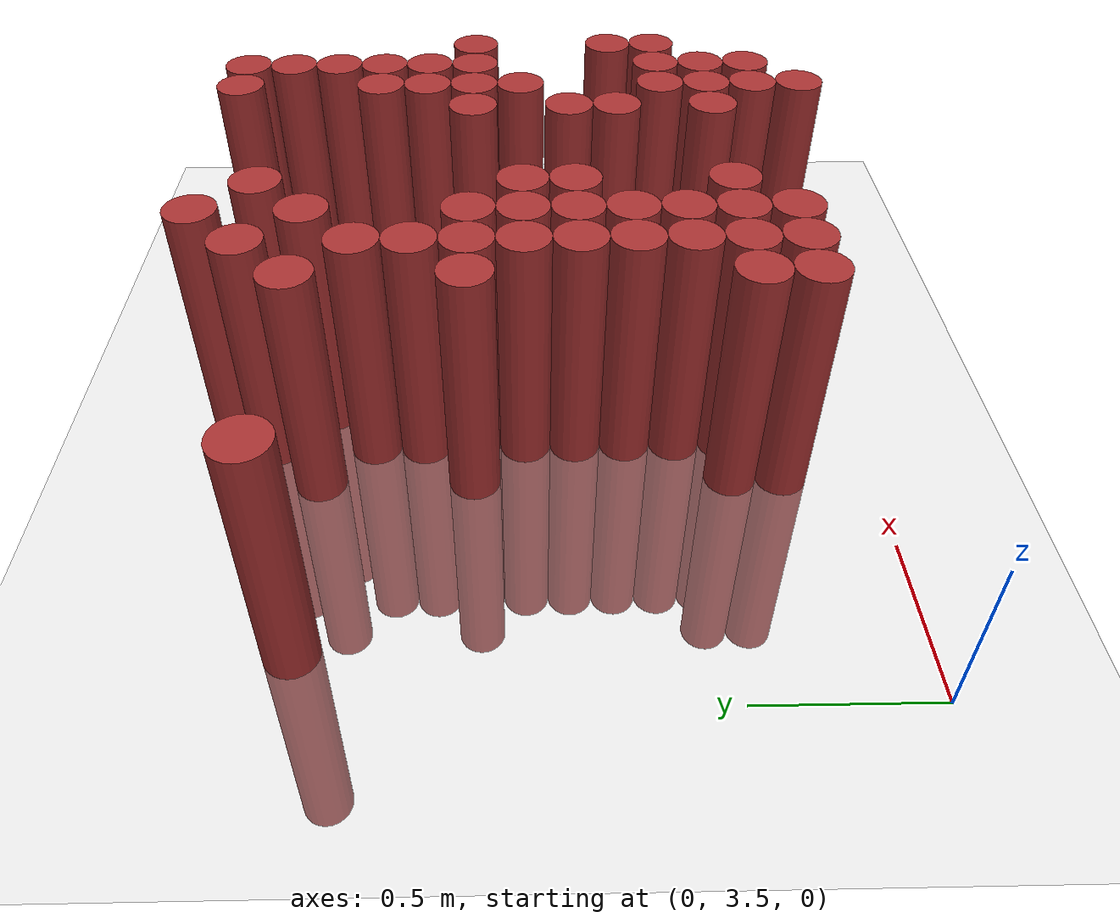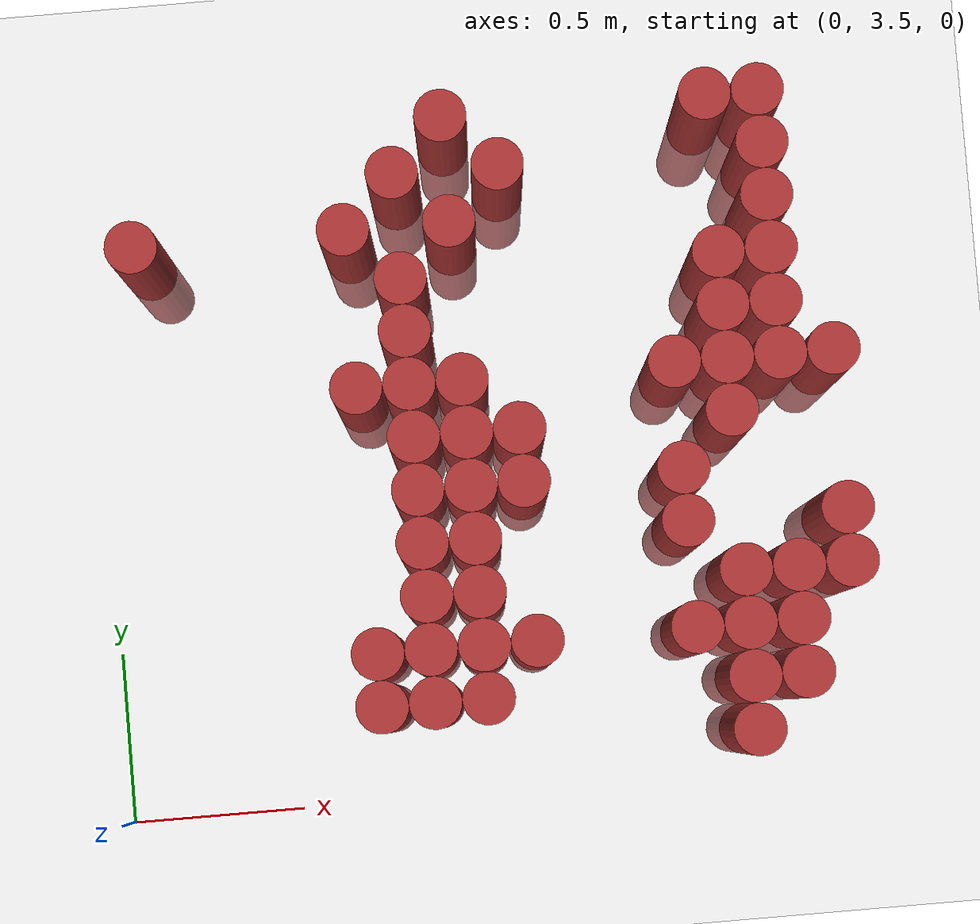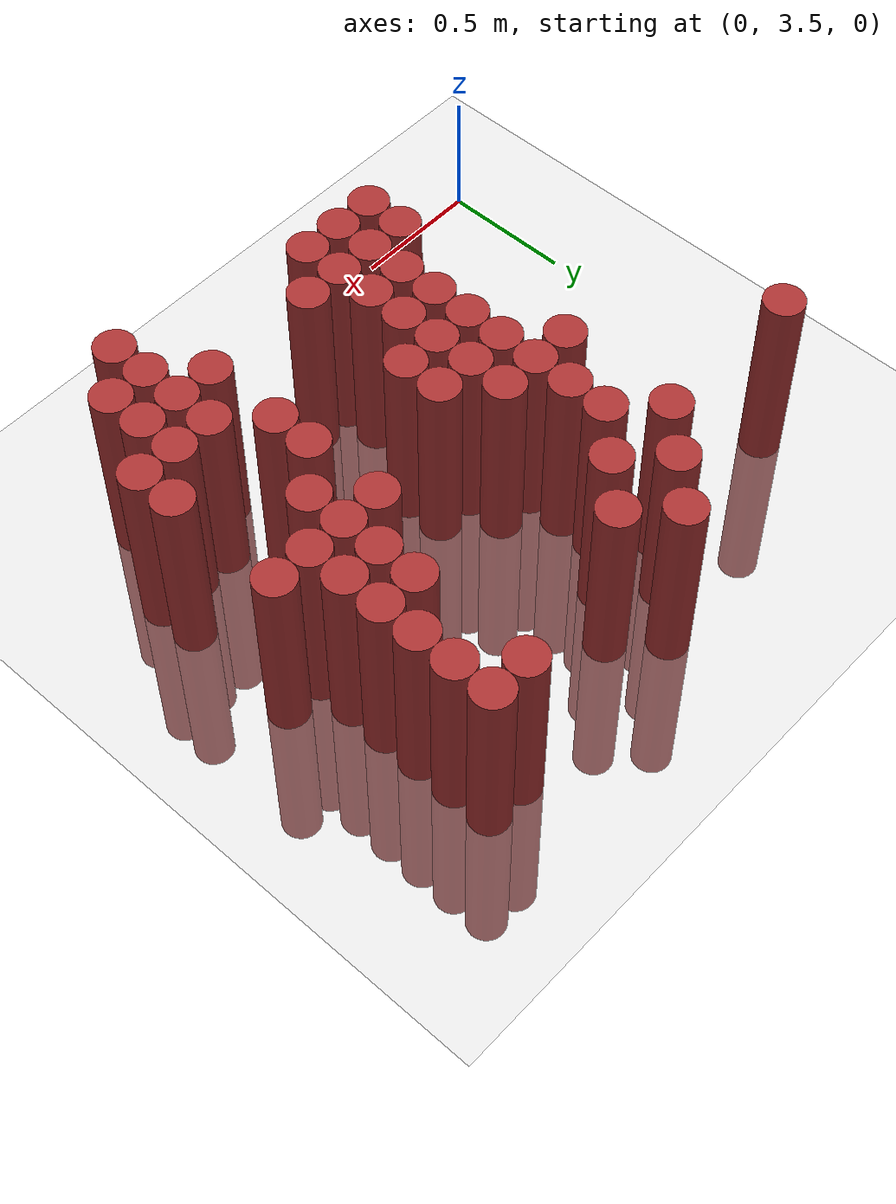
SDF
<sdf version="1.6">
 <world name="default">
  <model name="ground_plane">
   <static>1</static>
   <link name="link">
    <collision name="collision">
     <geometry><plane><normal>0 0 1</normal><size>100 100</size></plane></geometry>
     <surface><friction><ode><mu>100</mu><mu2>50</mu2></ode></friction></surface>
    </collision>
    <visual name="visual">
     <cast_shadows>0</cast_shadows>
     <geometry><plane><normal>0 0 1</normal><size>100 100</size></plane></geometry>
     <material>
      <script><uri>file://media/materials/scripts/gazebo.material</uri><name>Gazebo/Grey</name></script>
     </material>
    </visual>
   </link>
  </model>
  <model name="unit_cylinder_440">
   <static>1</static>
   <pose>0.175000 5.125000 0.000000 0.000000 0.000000 0.000000</pose>
   <link name="link">
    <inertial>
     <mass>1</mass>
     <inertia><ixx>0.145833</ixx><ixy>0</ixy><ixz>0</ixz><iyy>0.145833</iyy><iyz>0</iyz><izz>0.125</izz></inertia>
    </inertial>
    <collision name="collision">
     <geometry><cylinder><radius>0.075000</radius><length>1.5</length></cylinder></geometry>
    </collision>
    <visual name="visual">
     <geometry><cylinder><radius>0.075000</radius><length>1.5</length></cylinder></geometry>
     <material>
      <ambient>0.648000 0.192000 0.192000 1</ambient>
      <diffuse>0.648000 0.192000 0.192000 1</diffuse>
     </material>
     <material>
      <script><name>Gazebo/Grey</name><uri>file://media/materials/scripts/gazebo.material</uri></script>
     </material>
    </visual>
   </link>
  </model>
  <model name="unit_cylinder_457">
   <static>1</static>
   <pose>0.775000 3.775000 0.000000 0.000000 0.000000 0.000000</pose>
   <link name="link">
    <inertial>
     <mass>1</mass>
     <inertia><ixx>0.145833</ixx><ixy>0</ixy><ixz>0</ixz><iyy>0.145833</iyy><iyz>0</iyz><izz>0.125</izz></inertia>
    </inertial>
    <collision name="collision">
     <geometry><cylinder><radius>0.075000</radius><length>1.5</length></cylinder></geometry>
    </collision>
    <visual name="visual">
     <geometry><cylinder><radius>0.075000</radius><length>1.5</length></cylinder></geometry>
     <material>
      <ambient>0.648000 0.192000 0.192000 1</ambient>
      <diffuse>0.648000 0.192000 0.192000 1</diffuse>
     </material>
     <material>
      <script><name>Gazebo/Grey</name><uri>file://media/materials/scripts/gazebo.material</uri></script>
     </material>
    </visual>
   </link>
  </model>
  <model name="unit_cylinder_458">
   <static>1</static>
   <pose>0.775000 3.925000 0.000000 0.000000 0.000000 0.000000</pose>
   <link name="link">
    <inertial>
     <mass>1</mass>
     <inertia><ixx>0.145833</ixx><ixy>0</ixy><ixz>0</ixz><iyy>0.145833</iyy><iyz>0</iyz><izz>0.125</izz></inertia>
    </inertial>
    <collision name="collision">
     <geometry><cylinder><radius>0.075000</radius><length>1.5</length></cylinder></geometry>
    </collision>
    <visual name="visual">
     <geometry><cylinder><radius>0.075000</radius><length>1.5</length></cylinder></geometry>
     <material>
      <ambient>0.648000 0.192000 0.192000 1</ambient>
      <diffuse>0.648000 0.192000 0.192000 1</diffuse>
     </material>
     <material>
      <script><name>Gazebo/Grey</name><uri>file://media/materials/scripts/gazebo.material</uri></script>
     </material>
    </visual>
   </link>
  </model>
  <model name="unit_cylinder_459">
   <static>1</static>
   <pose>0.775000 4.675000 0.000000 0.000000 0.000000 0.000000</pose>
   <link name="link">
    <inertial>
     <mass>1</mass>
     <inertia><ixx>0.145833</ixx><ixy>0</ixy><ixz>0</ixz><iyy>0.145833</iyy><iyz>0</iyz><izz>0.125</izz></inertia>
    </inertial>
    <collision name="collision">
     <geometry><cylinder><radius>0.075000</radius><length>1.5</length></cylinder></geometry>
    </collision>
    <visual name="visual">
     <geometry><cylinder><radius>0.075000</radius><length>1.5</length></cylinder></geometry>
     <material>
      <ambient>0.648000 0.192000 0.192000 1</ambient>
      <diffuse>0.648000 0.192000 0.192000 1</diffuse>
     </material>
     <material>
      <script><name>Gazebo/Grey</name><uri>file://media/materials/scripts/gazebo.material</uri></script>
     </material>
    </visual>
   </link>
  </model>
  <model name="unit_cylinder_460">
   <static>1</static>
   <pose>0.775000 5.125000 0.000000 0.000000 0.000000 0.000000</pose>
   <link name="link">
    <inertial>
     <mass>1</mass>
     <inertia><ixx>0.145833</ixx><ixy>0</ixy><ixz>0</ixz><iyy>0.145833</iyy><iyz>0</iyz><izz>0.125</izz></inertia>
    </inertial>
    <collision name="collision">
     <geometry><cylinder><radius>0.075000</radius><length>1.5</length></cylinder></geometry>
    </collision>
    <visual name="visual">
     <geometry><cylinder><radius>0.075000</radius><length>1.5</length></cylinder></geometry>
     <material>
      <ambient>0.648000 0.192000 0.192000 1</ambient>
      <diffuse>0.648000 0.192000 0.192000 1</diffuse>
     </material>
     <material>
      <script><name>Gazebo/Grey</name><uri>file://media/materials/scripts/gazebo.material</uri></script>
     </material>
    </visual>
   </link>
  </model>
  <model name="unit_cylinder_468">
   <static>1</static>
   <pose>0.925000 3.775000 0.000000 0.000000 0.000000 0.000000</pose>
   <link name="link">
    <inertial>
     <mass>1</mass>
     <inertia><ixx>0.145833</ixx><ixy>0</ixy><ixz>0</ixz><iyy>0.145833</iyy><iyz>0</iyz><izz>0.125</izz></inertia>
    </inertial>
    <collision name="collision">
     <geometry><cylinder><radius>0.075000</radius><length>1.5</length></cylinder></geometry>
    </collision>
    <visual name="visual">
     <geometry><cylinder><radius>0.075000</radius><length>1.5</length></cylinder></geometry>
     <material>
      <ambient>0.648000 0.192000 0.192000 1</ambient>
      <diffuse>0.648000 0.192000 0.192000 1</diffuse>
     </material>
     <material>
      <script><name>Gazebo/Grey</name><uri>file://media/materials/scripts/gazebo.material</uri></script>
     </material>
    </visual>
   </link>
  </model>
  <model name="unit_cylinder_469">
   <static>1</static>
   <pose>0.925000 3.925000 0.000000 0.000000 0.000000 0.000000</pose>
   <link name="link">
    <inertial>
     <mass>1</mass>
     <inertia><ixx>0.145833</ixx><ixy>0</ixy><ixz>0</ixz><iyy>0.145833</iyy><iyz>0</iyz><izz>0.125</izz></inertia>
    </inertial>
    <collision name="collision">
     <geometry><cylinder><radius>0.075000</radius><length>1.5</length></cylinder></geometry>
    </collision>
    <visual name="visual">
     <geometry><cylinder><radius>0.075000</radius><length>1.5</length></cylinder></geometry>
     <material>
      <ambient>0.648000 0.192000 0.192000 1</ambient>
      <diffuse>0.648000 0.192000 0.192000 1</diffuse>
     </material>
     <material>
      <script><name>Gazebo/Grey</name><uri>file://media/materials/scripts/gazebo.material</uri></script>
     </material>
    </visual>
   </link>
  </model>
  <model name="unit_cylinder_470">
   <static>1</static>
   <pose>0.925000 4.075000 0.000000 0.000000 0.000000 0.000000</pose>
   <link name="link">
    <inertial>
     <mass>1</mass>
     <inertia><ixx>0.145833</ixx><ixy>0</ixy><ixz>0</ixz><iyy>0.145833</iyy><iyz>0</iyz><izz>0.125</izz></inertia>
    </inertial>
    <collision name="collision">
     <geometry><cylinder><radius>0.075000</radius><length>1.5</length></cylinder></geometry>
    </collision>
    <visual name="visual">
     <geometry><cylinder><radius>0.075000</radius><length>1.5</length></cylinder></geometry>
     <material>
      <ambient>0.648000 0.192000 0.192000 1</ambient>
      <diffuse>0.648000 0.192000 0.192000 1</diffuse>
     </material>
     <material>
      <script><name>Gazebo/Grey</name><uri>file://media/materials/scripts/gazebo.material</uri></script>
     </material>
    </visual>
   </link>
  </model>
  <model name="unit_cylinder_471">
   <static>1</static>
   <pose>0.925000 4.225000 0.000000 0.000000 0.000000 0.000000</pose>
   <link name="link">
    <inertial>
     <mass>1</mass>
     <inertia><ixx>0.145833</ixx><ixy>0</ixy><ixz>0</ixz><iyy>0.145833</iyy><iyz>0</iyz><izz>0.125</izz></inertia>
    </inertial>
    <collision name="collision">
     <geometry><cylinder><radius>0.075000</radius><length>1.5</length></cylinder></geometry>
    </collision>
    <visual name="visual">
     <geometry><cylinder><radius>0.075000</radius><length>1.5</length></cylinder></geometry>
     <material>
      <ambient>0.648000 0.192000 0.192000 1</ambient>
      <diffuse>0.648000 0.192000 0.192000 1</diffuse>
     </material>
     <material>
      <script><name>Gazebo/Grey</name><uri>file://media/materials/scripts/gazebo.material</uri></script>
     </material>
    </visual>
   </link>
  </model>
  <model name="unit_cylinder_472">
   <static>1</static>
   <pose>0.925000 4.375000 0.000000 0.000000 0.000000 0.000000</pose>
   <link name="link">
    <inertial>
     <mass>1</mass>
     <inertia><ixx>0.145833</ixx><ixy>0</ixy><ixz>0</ixz><iyy>0.145833</iyy><iyz>0</iyz><izz>0.125</izz></inertia>
    </inertial>
    <collision name="collision">
     <geometry><cylinder><radius>0.075000</radius><length>1.5</length></cylinder></geometry>
    </collision>
    <visual name="visual">
     <geometry><cylinder><radius>0.075000</radius><length>1.5</length></cylinder></geometry>
     <material>
      <ambient>0.648000 0.192000 0.192000 1</ambient>
      <diffuse>0.648000 0.192000 0.192000 1</diffuse>
     </material>
     <material>
      <script><name>Gazebo/Grey</name><uri>file://media/materials/scripts/gazebo.material</uri></script>
     </material>
    </visual>
   </link>
  </model>
  <model name="unit_cylinder_473">
   <static>1</static>
   <pose>0.925000 4.525000 0.000000 0.000000 0.000000 0.000000</pose>
   <link name="link">
    <inertial>
     <mass>1</mass>
     <inertia><ixx>0.145833</ixx><ixy>0</ixy><ixz>0</ixz><iyy>0.145833</iyy><iyz>0</iyz><izz>0.125</izz></inertia>
    </inertial>
    <collision name="collision">
     <geometry><cylinder><radius>0.075000</radius><length>1.5</length></cylinder></geometry>
    </collision>
    <visual name="visual">
     <geometry><cylinder><radius>0.075000</radius><length>1.5</length></cylinder></geometry>
     <material>
      <ambient>0.648000 0.192000 0.192000 1</ambient>
      <diffuse>0.648000 0.192000 0.192000 1</diffuse>
     </material>
     <material>
      <script><name>Gazebo/Grey</name><uri>file://media/materials/scripts/gazebo.material</uri></script>
     </material>
    </visual>
   </link>
  </model>
  <model name="unit_cylinder_474">
   <static>1</static>
   <pose>0.925000 4.675000 0.000000 0.000000 0.000000 0.000000</pose>
   <link name="link">
    <inertial>
     <mass>1</mass>
     <inertia><ixx>0.145833</ixx><ixy>0</ixy><ixz>0</ixz><iyy>0.145833</iyy><iyz>0</iyz><izz>0.125</izz></inertia>
    </inertial>
    <collision name="collision">
     <geometry><cylinder><radius>0.075000</radius><length>1.5</length></cylinder></geometry>
    </collision>
    <visual name="visual">
     <geometry><cylinder><radius>0.075000</radius><length>1.5</length></cylinder></geometry>
     <material>
      <ambient>0.648000 0.192000 0.192000 1</ambient>
      <diffuse>0.648000 0.192000 0.192000 1</diffuse>
     </material>
     <material>
      <script><name>Gazebo/Grey</name><uri>file://media/materials/scripts/gazebo.material</uri></script>
     </material>
    </visual>
   </link>
  </model>
  <model name="unit_cylinder_475">
   <static>1</static>
   <pose>0.925000 4.825000 0.000000 0.000000 0.000000 0.000000</pose>
   <link name="link">
    <inertial>
     <mass>1</mass>
     <inertia><ixx>0.145833</ixx><ixy>0</ixy><ixz>0</ixz><iyy>0.145833</iyy><iyz>0</iyz><izz>0.125</izz></inertia>
    </inertial>
    <collision name="collision">
     <geometry><cylinder><radius>0.075000</radius><length>1.5</length></cylinder></geometry>
    </collision>
    <visual name="visual">
     <geometry><cylinder><radius>0.075000</radius><length>1.5</length></cylinder></geometry>
     <material>
      <ambient>0.648000 0.192000 0.192000 1</ambient>
      <diffuse>0.648000 0.192000 0.192000 1</diffuse>
     </material>
     <material>
      <script><name>Gazebo/Grey</name><uri>file://media/materials/scripts/gazebo.material</uri></script>
     </material>
    </visual>
   </link>
  </model>
  <model name="unit_cylinder_476">
   <static>1</static>
   <pose>0.925000 4.975000 0.000000 0.000000 0.000000 0.000000</pose>
   <link name="link">
    <inertial>
     <mass>1</mass>
     <inertia><ixx>0.145833</ixx><ixy>0</ixy><ixz>0</ixz><iyy>0.145833</iyy><iyz>0</iyz><izz>0.125</izz></inertia>
    </inertial>
    <collision name="collision">
     <geometry><cylinder><radius>0.075000</radius><length>1.5</length></cylinder></geometry>
    </collision>
    <visual name="visual">
     <geometry><cylinder><radius>0.075000</radius><length>1.5</length></cylinder></geometry>
     <material>
      <ambient>0.648000 0.192000 0.192000 1</ambient>
      <diffuse>0.648000 0.192000 0.192000 1</diffuse>
     </material>
     <material>
      <script><name>Gazebo/Grey</name><uri>file://media/materials/scripts/gazebo.material</uri></script>
     </material>
    </visual>
   </link>
  </model>
  <model name="unit_cylinder_477">
   <static>1</static>
   <pose>0.925000 5.275000 0.000000 0.000000 0.000000 0.000000</pose>
   <link name="link">
    <inertial>
     <mass>1</mass>
     <inertia><ixx>0.145833</ixx><ixy>0</ixy><ixz>0</ixz><iyy>0.145833</iyy><iyz>0</iyz><izz>0.125</izz></inertia>
    </inertial>
    <collision name="collision">
     <geometry><cylinder><radius>0.075000</radius><length>1.5</length></cylinder></geometry>
    </collision>
    <visual name="visual">
     <geometry><cylinder><radius>0.075000</radius><length>1.5</length></cylinder></geometry>
     <material>
      <ambient>0.648000 0.192000 0.192000 1</ambient>
      <diffuse>0.648000 0.192000 0.192000 1</diffuse>
     </material>
     <material>
      <script><name>Gazebo/Grey</name><uri>file://media/materials/scripts/gazebo.material</uri></script>
     </material>
    </visual>
   </link>
  </model>
  <model name="unit_cylinder_488">
   <static>1</static>
   <pose>1.075000 3.775000 0.000000 0.000000 0.000000 0.000000</pose>
   <link name="link">
    <inertial>
     <mass>1</mass>
     <inertia><ixx>0.145833</ixx><ixy>0</ixy><ixz>0</ixz><iyy>0.145833</iyy><iyz>0</iyz><izz>0.125</izz></inertia>
    </inertial>
    <collision name="collision">
     <geometry><cylinder><radius>0.075000</radius><length>1.5</length></cylinder></geometry>
    </collision>
    <visual name="visual">
     <geometry><cylinder><radius>0.075000</radius><length>1.5</length></cylinder></geometry>
     <material>
      <ambient>0.648000 0.192000 0.192000 1</ambient>
      <diffuse>0.648000 0.192000 0.192000 1</diffuse>
     </material>
     <material>
      <script><name>Gazebo/Grey</name><uri>file://media/materials/scripts/gazebo.material</uri></script>
     </material>
    </visual>
   </link>
  </model>
  <model name="unit_cylinder_489">
   <static>1</static>
   <pose>1.075000 3.925000 0.000000 0.000000 0.000000 0.000000</pose>
   <link name="link">
    <inertial>
     <mass>1</mass>
     <inertia><ixx>0.145833</ixx><ixy>0</ixy><ixz>0</ixz><iyy>0.145833</iyy><iyz>0</iyz><izz>0.125</izz></inertia>
    </inertial>
    <collision name="collision">
     <geometry><cylinder><radius>0.075000</radius><length>1.5</length></cylinder></geometry>
    </collision>
    <visual name="visual">
     <geometry><cylinder><radius>0.075000</radius><length>1.5</length></cylinder></geometry>
     <material>
      <ambient>0.648000 0.192000 0.192000 1</ambient>
      <diffuse>0.648000 0.192000 0.192000 1</diffuse>
     </material>
     <material>
      <script><name>Gazebo/Grey</name><uri>file://media/materials/scripts/gazebo.material</uri></script>
     </material>
    </visual>
   </link>
  </model>
  <model name="unit_cylinder_490">
   <static>1</static>
   <pose>1.075000 4.075000 0.000000 0.000000 0.000000 0.000000</pose>
   <link name="link">
    <inertial>
     <mass>1</mass>
     <inertia><ixx>0.145833</ixx><ixy>0</ixy><ixz>0</ixz><iyy>0.145833</iyy><iyz>0</iyz><izz>0.125</izz></inertia>
    </inertial>
    <collision name="collision">
     <geometry><cylinder><radius>0.075000</radius><length>1.5</length></cylinder></geometry>
    </collision>
    <visual name="visual">
     <geometry><cylinder><radius>0.075000</radius><length>1.5</length></cylinder></geometry>
     <material>
      <ambient>0.648000 0.192000 0.192000 1</ambient>
      <diffuse>0.648000 0.192000 0.192000 1</diffuse>
     </material>
     <material>
      <script><name>Gazebo/Grey</name><uri>file://media/materials/scripts/gazebo.material</uri></script>
     </material>
    </visual>
   </link>
  </model>
  <model name="unit_cylinder_491">
   <static>1</static>
   <pose>1.075000 4.225000 0.000000 0.000000 0.000000 0.000000</pose>
   <link name="link">
    <inertial>
     <mass>1</mass>
     <inertia><ixx>0.145833</ixx><ixy>0</ixy><ixz>0</ixz><iyy>0.145833</iyy><iyz>0</iyz><izz>0.125</izz></inertia>
    </inertial>
    <collision name="collision">
     <geometry><cylinder><radius>0.075000</radius><length>1.5</length></cylinder></geometry>
    </collision>
    <visual name="visual">
     <geometry><cylinder><radius>0.075000</radius><length>1.5</length></cylinder></geometry>
     <material>
      <ambient>0.648000 0.192000 0.192000 1</ambient>
      <diffuse>0.648000 0.192000 0.192000 1</diffuse>
     </material>
     <material>
      <script><name>Gazebo/Grey</name><uri>file://media/materials/scripts/gazebo.material</uri></script>
     </material>
    </visual>
   </link>
  </model>
  <model name="unit_cylinder_492">
   <static>1</static>
   <pose>1.075000 4.375000 0.000000 0.000000 0.000000 0.000000</pose>
   <link name="link">
    <inertial>
     <mass>1</mass>
     <inertia><ixx>0.145833</ixx><ixy>0</ixy><ixz>0</ixz><iyy>0.145833</iyy><iyz>0</iyz><izz>0.125</izz></inertia>
    </inertial>
    <collision name="collision">
     <geometry><cylinder><radius>0.075000</radius><length>1.5</length></cylinder></geometry>
    </collision>
    <visual name="visual">
     <geometry><cylinder><radius>0.075000</radius><length>1.5</length></cylinder></geometry>
     <material>
      <ambient>0.648000 0.192000 0.192000 1</ambient>
      <diffuse>0.648000 0.192000 0.192000 1</diffuse>
     </material>
     <material>
      <script><name>Gazebo/Grey</name><uri>file://media/materials/scripts/gazebo.material</uri></script>
     </material>
    </visual>
   </link>
  </model>
  <model name="unit_cylinder_493">
   <static>1</static>
   <pose>1.075000 4.525000 0.000000 0.000000 0.000000 0.000000</pose>
   <link name="link">
    <inertial>
     <mass>1</mass>
     <inertia><ixx>0.145833</ixx><ixy>0</ixy><ixz>0</ixz><iyy>0.145833</iyy><iyz>0</iyz><izz>0.125</izz></inertia>
    </inertial>
    <collision name="collision">
     <geometry><cylinder><radius>0.075000</radius><length>1.5</length></cylinder></geometry>
    </collision>
    <visual name="visual">
     <geometry><cylinder><radius>0.075000</radius><length>1.5</length></cylinder></geometry>
     <material>
      <ambient>0.648000 0.192000 0.192000 1</ambient>
      <diffuse>0.648000 0.192000 0.192000 1</diffuse>
     </material>
     <material>
      <script><name>Gazebo/Grey</name><uri>file://media/materials/scripts/gazebo.material</uri></script>
     </material>
    </visual>
   </link>
  </model>
  <model name="unit_cylinder_494">
   <static>1</static>
   <pose>1.075000 4.675000 0.000000 0.000000 0.000000 0.000000</pose>
   <link name="link">
    <inertial>
     <mass>1</mass>
     <inertia><ixx>0.145833</ixx><ixy>0</ixy><ixz>0</ixz><iyy>0.145833</iyy><iyz>0</iyz><izz>0.125</izz></inertia>
    </inertial>
    <collision name="collision">
     <geometry><cylinder><radius>0.075000</radius><length>1.5</length></cylinder></geometry>
    </collision>
    <visual name="visual">
     <geometry><cylinder><radius>0.075000</radius><length>1.5</length></cylinder></geometry>
     <material>
      <ambient>0.648000 0.192000 0.192000 1</ambient>
      <diffuse>0.648000 0.192000 0.192000 1</diffuse>
     </material>
     <material>
      <script><name>Gazebo/Grey</name><uri>file://media/materials/scripts/gazebo.material</uri></script>
     </material>
    </visual>
   </link>
  </model>
  <model name="unit_cylinder_495">
   <static>1</static>
   <pose>1.075000 5.125000 0.000000 0.000000 0.000000 0.000000</pose>
   <link name="link">
    <inertial>
     <mass>1</mass>
     <inertia><ixx>0.145833</ixx><ixy>0</ixy><ixz>0</ixz><iyy>0.145833</iyy><iyz>0</iyz><izz>0.125</izz></inertia>
    </inertial>
    <collision name="collision">
     <geometry><cylinder><radius>0.075000</radius><length>1.5</length></cylinder></geometry>
    </collision>
    <visual name="visual">
     <geometry><cylinder><radius>0.075000</radius><length>1.5</length></cylinder></geometry>
     <material>
      <ambient>0.648000 0.192000 0.192000 1</ambient>
      <diffuse>0.648000 0.192000 0.192000 1</diffuse>
     </material>
     <material>
      <script><name>Gazebo/Grey</name><uri>file://media/materials/scripts/gazebo.material</uri></script>
     </material>
    </visual>
   </link>
  </model>
  <model name="unit_cylinder_496">
   <static>1</static>
   <pose>1.075000 5.425000 0.000000 0.000000 0.000000 0.000000</pose>
   <link name="link">
    <inertial>
     <mass>1</mass>
     <inertia><ixx>0.145833</ixx><ixy>0</ixy><ixz>0</ixz><iyy>0.145833</iyy><iyz>0</iyz><izz>0.125</izz></inertia>
    </inertial>
    <collision name="collision">
     <geometry><cylinder><radius>0.075000</radius><length>1.5</length></cylinder></geometry>
    </collision>
    <visual name="visual">
     <geometry><cylinder><radius>0.075000</radius><length>1.5</length></cylinder></geometry>
     <material>
      <ambient>0.648000 0.192000 0.192000 1</ambient>
      <diffuse>0.648000 0.192000 0.192000 1</diffuse>
     </material>
     <material>
      <script><name>Gazebo/Grey</name><uri>file://media/materials/scripts/gazebo.material</uri></script>
     </material>
    </visual>
   </link>
  </model>
  <model name="unit_cylinder_500">
   <static>1</static>
   <pose>1.225000 3.925000 0.000000 0.000000 0.000000 0.000000</pose>
   <link name="link">
    <inertial>
     <mass>1</mass>
     <inertia><ixx>0.145833</ixx><ixy>0</ixy><ixz>0</ixz><iyy>0.145833</iyy><iyz>0</iyz><izz>0.125</izz></inertia>
    </inertial>
    <collision name="collision">
     <geometry><cylinder><radius>0.075000</radius><length>1.5</length></cylinder></geometry>
    </collision>
    <visual name="visual">
     <geometry><cylinder><radius>0.075000</radius><length>1.5</length></cylinder></geometry>
     <material>
      <ambient>0.648000 0.192000 0.192000 1</ambient>
      <diffuse>0.648000 0.192000 0.192000 1</diffuse>
     </material>
     <material>
      <script><name>Gazebo/Grey</name><uri>file://media/materials/scripts/gazebo.material</uri></script>
     </material>
    </visual>
   </link>
  </model>
  <model name="unit_cylinder_501">
   <static>1</static>
   <pose>1.225000 4.375000 0.000000 0.000000 0.000000 0.000000</pose>
   <link name="link">
    <inertial>
     <mass>1</mass>
     <inertia><ixx>0.145833</ixx><ixy>0</ixy><ixz>0</ixz><iyy>0.145833</iyy><iyz>0</iyz><izz>0.125</izz></inertia>
    </inertial>
    <collision name="collision">
     <geometry><cylinder><radius>0.075000</radius><length>1.5</length></cylinder></geometry>
    </collision>
    <visual name="visual">
     <geometry><cylinder><radius>0.075000</radius><length>1.5</length></cylinder></geometry>
     <material>
      <ambient>0.648000 0.192000 0.192000 1</ambient>
      <diffuse>0.648000 0.192000 0.192000 1</diffuse>
     </material>
     <material>
      <script><name>Gazebo/Grey</name><uri>file://media/materials/scripts/gazebo.material</uri></script>
     </material>
    </visual>
   </link>
  </model>
  <model name="unit_cylinder_502">
   <static>1</static>
   <pose>1.225000 4.525000 0.000000 0.000000 0.000000 0.000000</pose>
   <link name="link">
    <inertial>
     <mass>1</mass>
     <inertia><ixx>0.145833</ixx><ixy>0</ixy><ixz>0</ixz><iyy>0.145833</iyy><iyz>0</iyz><izz>0.125</izz></inertia>
    </inertial>
    <collision name="collision">
     <geometry><cylinder><radius>0.075000</radius><length>1.5</length></cylinder></geometry>
    </collision>
    <visual name="visual">
     <geometry><cylinder><radius>0.075000</radius><length>1.5</length></cylinder></geometry>
     <material>
      <ambient>0.648000 0.192000 0.192000 1</ambient>
      <diffuse>0.648000 0.192000 0.192000 1</diffuse>
     </material>
     <material>
      <script><name>Gazebo/Grey</name><uri>file://media/materials/scripts/gazebo.material</uri></script>
     </material>
    </visual>
   </link>
  </model>
  <model name="unit_cylinder_503">
   <static>1</static>
   <pose>1.225000 5.275000 0.000000 0.000000 0.000000 0.000000</pose>
   <link name="link">
    <inertial>
     <mass>1</mass>
     <inertia><ixx>0.145833</ixx><ixy>0</ixy><ixz>0</ixz><iyy>0.145833</iyy><iyz>0</iyz><izz>0.125</izz></inertia>
    </inertial>
    <collision name="collision">
     <geometry><cylinder><radius>0.075000</radius><length>1.5</length></cylinder></geometry>
    </collision>
    <visual name="visual">
     <geometry><cylinder><radius>0.075000</radius><length>1.5</length></cylinder></geometry>
     <material>
      <ambient>0.648000 0.192000 0.192000 1</ambient>
      <diffuse>0.648000 0.192000 0.192000 1</diffuse>
     </material>
     <material>
      <script><name>Gazebo/Grey</name><uri>file://media/materials/scripts/gazebo.material</uri></script>
     </material>
    </visual>
   </link>
  </model>
  <model name="unit_cylinder_519">
   <static>1</static>
   <pose>1.675000 3.925000 0.000000 0.000000 0.000000 0.000000</pose>
   <link name="link">
    <inertial>
     <mass>1</mass>
     <inertia><ixx>0.145833</ixx><ixy>0</ixy><ixz>0</ixz><iyy>0.145833</iyy><iyz>0</iyz><izz>0.125</izz></inertia>
    </inertial>
    <collision name="collision">
     <geometry><cylinder><radius>0.075000</radius><length>1.5</length></cylinder></geometry>
    </collision>
    <visual name="visual">
     <geometry><cylinder><radius>0.075000</radius><length>1.5</length></cylinder></geometry>
     <material>
      <ambient>0.648000 0.192000 0.192000 1</ambient>
      <diffuse>0.648000 0.192000 0.192000 1</diffuse>
     </material>
     <material>
      <script><name>Gazebo/Grey</name><uri>file://media/materials/scripts/gazebo.material</uri></script>
     </material>
    </visual>
   </link>
  </model>
  <model name="unit_cylinder_520">
   <static>1</static>
   <pose>1.675000 4.225000 0.000000 0.000000 0.000000 0.000000</pose>
   <link name="link">
    <inertial>
     <mass>1</mass>
     <inertia><ixx>0.145833</ixx><ixy>0</ixy><ixz>0</ixz><iyy>0.145833</iyy><iyz>0</iyz><izz>0.125</izz></inertia>
    </inertial>
    <collision name="collision">
     <geometry><cylinder><radius>0.075000</radius><length>1.5</length></cylinder></geometry>
    </collision>
    <visual name="visual">
     <geometry><cylinder><radius>0.075000</radius><length>1.5</length></cylinder></geometry>
     <material>
      <ambient>0.648000 0.192000 0.192000 1</ambient>
      <diffuse>0.648000 0.192000 0.192000 1</diffuse>
     </material>
     <material>
      <script><name>Gazebo/Grey</name><uri>file://media/materials/scripts/gazebo.material</uri></script>
     </material>
    </visual>
   </link>
  </model>
  <model name="unit_cylinder_521">
   <static>1</static>
   <pose>1.675000 4.375000 0.000000 0.000000 0.000000 0.000000</pose>
   <link name="link">
    <inertial>
     <mass>1</mass>
     <inertia><ixx>0.145833</ixx><ixy>0</ixy><ixz>0</ixz><iyy>0.145833</iyy><iyz>0</iyz><izz>0.125</izz></inertia>
    </inertial>
    <collision name="collision">
     <geometry><cylinder><radius>0.075000</radius><length>1.5</length></cylinder></geometry>
    </collision>
    <visual name="visual">
     <geometry><cylinder><radius>0.075000</radius><length>1.5</length></cylinder></geometry>
     <material>
      <ambient>0.648000 0.192000 0.192000 1</ambient>
      <diffuse>0.648000 0.192000 0.192000 1</diffuse>
     </material>
     <material>
      <script><name>Gazebo/Grey</name><uri>file://media/materials/scripts/gazebo.material</uri></script>
     </material>
    </visual>
   </link>
  </model>
  <model name="unit_cylinder_522">
   <static>1</static>
   <pose>1.675000 4.675000 0.000000 0.000000 0.000000 0.000000</pose>
   <link name="link">
    <inertial>
     <mass>1</mass>
     <inertia><ixx>0.145833</ixx><ixy>0</ixy><ixz>0</ixz><iyy>0.145833</iyy><iyz>0</iyz><izz>0.125</izz></inertia>
    </inertial>
    <collision name="collision">
     <geometry><cylinder><radius>0.075000</radius><length>1.5</length></cylinder></geometry>
    </collision>
    <visual name="visual">
     <geometry><cylinder><radius>0.075000</radius><length>1.5</length></cylinder></geometry>
     <material>
      <ambient>0.648000 0.192000 0.192000 1</ambient>
      <diffuse>0.648000 0.192000 0.192000 1</diffuse>
     </material>
     <material>
      <script><name>Gazebo/Grey</name><uri>file://media/materials/scripts/gazebo.material</uri></script>
     </material>
    </visual>
   </link>
  </model>
  <model name="unit_cylinder_526">
   <static>1</static>
   <pose>1.825000 3.625000 0.000000 0.000000 0.000000 0.000000</pose>
   <link name="link">
    <inertial>
     <mass>1</mass>
     <inertia><ixx>0.145833</ixx><ixy>0</ixy><ixz>0</ixz><iyy>0.145833</iyy><iyz>0</iyz><izz>0.125</izz></inertia>
    </inertial>
    <collision name="collision">
     <geometry><cylinder><radius>0.075000</radius><length>1.5</length></cylinder></geometry>
    </collision>
    <visual name="visual">
     <geometry><cylinder><radius>0.075000</radius><length>1.5</length></cylinder></geometry>
     <material>
      <ambient>0.648000 0.192000 0.192000 1</ambient>
      <diffuse>0.648000 0.192000 0.192000 1</diffuse>
     </material>
     <material>
      <script><name>Gazebo/Grey</name><uri>file://media/materials/scripts/gazebo.material</uri></script>
     </material>
    </visual>
   </link>
  </model>
  <model name="unit_cylinder_527">
   <static>1</static>
   <pose>1.825000 3.775000 0.000000 0.000000 0.000000 0.000000</pose>
   <link name="link">
    <inertial>
     <mass>1</mass>
     <inertia><ixx>0.145833</ixx><ixy>0</ixy><ixz>0</ixz><iyy>0.145833</iyy><iyz>0</iyz><izz>0.125</izz></inertia>
    </inertial>
    <collision name="collision">
     <geometry><cylinder><radius>0.075000</radius><length>1.5</length></cylinder></geometry>
    </collision>
    <visual name="visual">
     <geometry><cylinder><radius>0.075000</radius><length>1.5</length></cylinder></geometry>
     <material>
      <ambient>0.648000 0.192000 0.192000 1</ambient>
      <diffuse>0.648000 0.192000 0.192000 1</diffuse>
     </material>
     <material>
      <script><name>Gazebo/Grey</name><uri>file://media/materials/scripts/gazebo.material</uri></script>
     </material>
    </visual>
   </link>
  </model>
  <model name="unit_cylinder_528">
   <static>1</static>
   <pose>1.825000 3.925000 0.000000 0.000000 0.000000 0.000000</pose>
   <link name="link">
    <inertial>
     <mass>1</mass>
     <inertia><ixx>0.145833</ixx><ixy>0</ixy><ixz>0</ixz><iyy>0.145833</iyy><iyz>0</iyz><izz>0.125</izz></inertia>
    </inertial>
    <collision name="collision">
     <geometry><cylinder><radius>0.075000</radius><length>1.5</length></cylinder></geometry>
    </collision>
    <visual name="visual">
     <geometry><cylinder><radius>0.075000</radius><length>1.5</length></cylinder></geometry>
     <material>
      <ambient>0.648000 0.192000 0.192000 1</ambient>
      <diffuse>0.648000 0.192000 0.192000 1</diffuse>
     </material>
     <material>
      <script><name>Gazebo/Grey</name><uri>file://media/materials/scripts/gazebo.material</uri></script>
     </material>
    </visual>
   </link>
  </model>
  <model name="unit_cylinder_529">
   <static>1</static>
   <pose>1.825000 4.075000 0.000000 0.000000 0.000000 0.000000</pose>
   <link name="link">
    <inertial>
     <mass>1</mass>
     <inertia><ixx>0.145833</ixx><ixy>0</ixy><ixz>0</ixz><iyy>0.145833</iyy><iyz>0</iyz><izz>0.125</izz></inertia>
    </inertial>
    <collision name="collision">
     <geometry><cylinder><radius>0.075000</radius><length>1.5</length></cylinder></geometry>
    </collision>
    <visual name="visual">
     <geometry><cylinder><radius>0.075000</radius><length>1.5</length></cylinder></geometry>
     <material>
      <ambient>0.648000 0.192000 0.192000 1</ambient>
      <diffuse>0.648000 0.192000 0.192000 1</diffuse>
     </material>
     <material>
      <script><name>Gazebo/Grey</name><uri>file://media/materials/scripts/gazebo.material</uri></script>
     </material>
    </visual>
   </link>
  </model>
  <model name="unit_cylinder_530">
   <static>1</static>
   <pose>1.825000 4.525000 0.000000 0.000000 0.000000 0.000000</pose>
   <link name="link">
    <inertial>
     <mass>1</mass>
     <inertia><ixx>0.145833</ixx><ixy>0</ixy><ixz>0</ixz><iyy>0.145833</iyy><iyz>0</iyz><izz>0.125</izz></inertia>
    </inertial>
    <collision name="collision">
     <geometry><cylinder><radius>0.075000</radius><length>1.5</length></cylinder></geometry>
    </collision>
    <visual name="visual">
     <geometry><cylinder><radius>0.075000</radius><length>1.5</length></cylinder></geometry>
     <material>
      <ambient>0.648000 0.192000 0.192000 1</ambient>
      <diffuse>0.648000 0.192000 0.192000 1</diffuse>
     </material>
     <material>
      <script><name>Gazebo/Grey</name><uri>file://media/materials/scripts/gazebo.material</uri></script>
     </material>
    </visual>
   </link>
  </model>
  <model name="unit_cylinder_531">
   <static>1</static>
   <pose>1.825000 4.675000 0.000000 0.000000 0.000000 0.000000</pose>
   <link name="link">
    <inertial>
     <mass>1</mass>
     <inertia><ixx>0.145833</ixx><ixy>0</ixy><ixz>0</ixz><iyy>0.145833</iyy><iyz>0</iyz><izz>0.125</izz></inertia>
    </inertial>
    <collision name="collision">
     <geometry><cylinder><radius>0.075000</radius><length>1.5</length></cylinder></geometry>
    </collision>
    <visual name="visual">
     <geometry><cylinder><radius>0.075000</radius><length>1.5</length></cylinder></geometry>
     <material>
      <ambient>0.648000 0.192000 0.192000 1</ambient>
      <diffuse>0.648000 0.192000 0.192000 1</diffuse>
     </material>
     <material>
      <script><name>Gazebo/Grey</name><uri>file://media/materials/scripts/gazebo.material</uri></script>
     </material>
    </visual>
   </link>
  </model>
  <model name="unit_cylinder_532">
   <static>1</static>
   <pose>1.825000 4.825000 0.000000 0.000000 0.000000 0.000000</pose>
   <link name="link">
    <inertial>
     <mass>1</mass>
     <inertia><ixx>0.145833</ixx><ixy>0</ixy><ixz>0</ixz><iyy>0.145833</iyy><iyz>0</iyz><izz>0.125</izz></inertia>
    </inertial>
    <collision name="collision">
     <geometry><cylinder><radius>0.075000</radius><length>1.5</length></cylinder></geometry>
    </collision>
    <visual name="visual">
     <geometry><cylinder><radius>0.075000</radius><length>1.5</length></cylinder></geometry>
     <material>
      <ambient>0.648000 0.192000 0.192000 1</ambient>
      <diffuse>0.648000 0.192000 0.192000 1</diffuse>
     </material>
     <material>
      <script><name>Gazebo/Grey</name><uri>file://media/materials/scripts/gazebo.material</uri></script>
     </material>
    </visual>
   </link>
  </model>
  <model name="unit_cylinder_533">
   <static>1</static>
   <pose>1.825000 4.975000 0.000000 0.000000 0.000000 0.000000</pose>
   <link name="link">
    <inertial>
     <mass>1</mass>
     <inertia><ixx>0.145833</ixx><ixy>0</ixy><ixz>0</ixz><iyy>0.145833</iyy><iyz>0</iyz><izz>0.125</izz></inertia>
    </inertial>
    <collision name="collision">
     <geometry><cylinder><radius>0.075000</radius><length>1.5</length></cylinder></geometry>
    </collision>
    <visual name="visual">
     <geometry><cylinder><radius>0.075000</radius><length>1.5</length></cylinder></geometry>
     <material>
      <ambient>0.648000 0.192000 0.192000 1</ambient>
      <diffuse>0.648000 0.192000 0.192000 1</diffuse>
     </material>
     <material>
      <script><name>Gazebo/Grey</name><uri>file://media/materials/scripts/gazebo.material</uri></script>
     </material>
    </visual>
   </link>
  </model>
  <model name="unit_cylinder_534">
   <static>1</static>
   <pose>1.825000 5.425000 0.000000 0.000000 0.000000 0.000000</pose>
   <link name="link">
    <inertial>
     <mass>1</mass>
     <inertia><ixx>0.145833</ixx><ixy>0</ixy><ixz>0</ixz><iyy>0.145833</iyy><iyz>0</iyz><izz>0.125</izz></inertia>
    </inertial>
    <collision name="collision">
     <geometry><cylinder><radius>0.075000</radius><length>1.5</length></cylinder></geometry>
    </collision>
    <visual name="visual">
     <geometry><cylinder><radius>0.075000</radius><length>1.5</length></cylinder></geometry>
     <material>
      <ambient>0.648000 0.192000 0.192000 1</ambient>
      <diffuse>0.648000 0.192000 0.192000 1</diffuse>
     </material>
     <material>
      <script><name>Gazebo/Grey</name><uri>file://media/materials/scripts/gazebo.material</uri></script>
     </material>
    </visual>
   </link>
  </model>
  <model name="unit_cylinder_540">
   <static>1</static>
   <pose>1.975000 3.775000 0.000000 0.000000 0.000000 0.000000</pose>
   <link name="link">
    <inertial>
     <mass>1</mass>
     <inertia><ixx>0.145833</ixx><ixy>0</ixy><ixz>0</ixz><iyy>0.145833</iyy><iyz>0</iyz><izz>0.125</izz></inertia>
    </inertial>
    <collision name="collision">
     <geometry><cylinder><radius>0.075000</radius><length>1.5</length></cylinder></geometry>
    </collision>
    <visual name="visual">
     <geometry><cylinder><radius>0.075000</radius><length>1.5</length></cylinder></geometry>
     <material>
      <ambient>0.648000 0.192000 0.192000 1</ambient>
      <diffuse>0.648000 0.192000 0.192000 1</diffuse>
     </material>
     <material>
      <script><name>Gazebo/Grey</name><uri>file://media/materials/scripts/gazebo.material</uri></script>
     </material>
    </visual>
   </link>
  </model>
  <model name="unit_cylinder_541">
   <static>1</static>
   <pose>1.975000 3.925000 0.000000 0.000000 0.000000 0.000000</pose>
   <link name="link">
    <inertial>
     <mass>1</mass>
     <inertia><ixx>0.145833</ixx><ixy>0</ixy><ixz>0</ixz><iyy>0.145833</iyy><iyz>0</iyz><izz>0.125</izz></inertia>
    </inertial>
    <collision name="collision">
     <geometry><cylinder><radius>0.075000</radius><length>1.5</length></cylinder></geometry>
    </collision>
    <visual name="visual">
     <geometry><cylinder><radius>0.075000</radius><length>1.5</length></cylinder></geometry>
     <material>
      <ambient>0.648000 0.192000 0.192000 1</ambient>
      <diffuse>0.648000 0.192000 0.192000 1</diffuse>
     </material>
     <material>
      <script><name>Gazebo/Grey</name><uri>file://media/materials/scripts/gazebo.material</uri></script>
     </material>
    </visual>
   </link>
  </model>
  <model name="unit_cylinder_542">
   <static>1</static>
   <pose>1.975000 4.075000 0.000000 0.000000 0.000000 0.000000</pose>
   <link name="link">
    <inertial>
     <mass>1</mass>
     <inertia><ixx>0.145833</ixx><ixy>0</ixy><ixz>0</ixz><iyy>0.145833</iyy><iyz>0</iyz><izz>0.125</izz></inertia>
    </inertial>
    <collision name="collision">
     <geometry><cylinder><radius>0.075000</radius><length>1.5</length></cylinder></geometry>
    </collision>
    <visual name="visual">
     <geometry><cylinder><radius>0.075000</radius><length>1.5</length></cylinder></geometry>
     <material>
      <ambient>0.648000 0.192000 0.192000 1</ambient>
      <diffuse>0.648000 0.192000 0.192000 1</diffuse>
     </material>
     <material>
      <script><name>Gazebo/Grey</name><uri>file://media/materials/scripts/gazebo.material</uri></script>
     </material>
    </visual>
   </link>
  </model>
  <model name="unit_cylinder_543">
   <static>1</static>
   <pose>1.975000 4.675000 0.000000 0.000000 0.000000 0.000000</pose>
   <link name="link">
    <inertial>
     <mass>1</mass>
     <inertia><ixx>0.145833</ixx><ixy>0</ixy><ixz>0</ixz><iyy>0.145833</iyy><iyz>0</iyz><izz>0.125</izz></inertia>
    </inertial>
    <collision name="collision">
     <geometry><cylinder><radius>0.075000</radius><length>1.5</length></cylinder></geometry>
    </collision>
    <visual name="visual">
     <geometry><cylinder><radius>0.075000</radius><length>1.5</length></cylinder></geometry>
     <material>
      <ambient>0.648000 0.192000 0.192000 1</ambient>
      <diffuse>0.648000 0.192000 0.192000 1</diffuse>
     </material>
     <material>
      <script><name>Gazebo/Grey</name><uri>file://media/materials/scripts/gazebo.material</uri></script>
     </material>
    </visual>
   </link>
  </model>
  <model name="unit_cylinder_544">
   <static>1</static>
   <pose>1.975000 4.825000 0.000000 0.000000 0.000000 0.000000</pose>
   <link name="link">
    <inertial>
     <mass>1</mass>
     <inertia><ixx>0.145833</ixx><ixy>0</ixy><ixz>0</ixz><iyy>0.145833</iyy><iyz>0</iyz><izz>0.125</izz></inertia>
    </inertial>
    <collision name="collision">
     <geometry><cylinder><radius>0.075000</radius><length>1.5</length></cylinder></geometry>
    </collision>
    <visual name="visual">
     <geometry><cylinder><radius>0.075000</radius><length>1.5</length></cylinder></geometry>
     <material>
      <ambient>0.648000 0.192000 0.192000 1</ambient>
      <diffuse>0.648000 0.192000 0.192000 1</diffuse>
     </material>
     <material>
      <script><name>Gazebo/Grey</name><uri>file://media/materials/scripts/gazebo.material</uri></script>
     </material>
    </visual>
   </link>
  </model>
  <model name="unit_cylinder_545">
   <static>1</static>
   <pose>1.975000 4.975000 0.000000 0.000000 0.000000 0.000000</pose>
   <link name="link">
    <inertial>
     <mass>1</mass>
     <inertia><ixx>0.145833</ixx><ixy>0</ixy><ixz>0</ixz><iyy>0.145833</iyy><iyz>0</iyz><izz>0.125</izz></inertia>
    </inertial>
    <collision name="collision">
     <geometry><cylinder><radius>0.075000</radius><length>1.5</length></cylinder></geometry>
    </collision>
    <visual name="visual">
     <geometry><cylinder><radius>0.075000</radius><length>1.5</length></cylinder></geometry>
     <material>
      <ambient>0.648000 0.192000 0.192000 1</ambient>
      <diffuse>0.648000 0.192000 0.192000 1</diffuse>
     </material>
     <material>
      <script><name>Gazebo/Grey</name><uri>file://media/materials/scripts/gazebo.material</uri></script>
     </material>
    </visual>
   </link>
  </model>
  <model name="unit_cylinder_546">
   <static>1</static>
   <pose>1.975000 5.125000 0.000000 0.000000 0.000000 0.000000</pose>
   <link name="link">
    <inertial>
     <mass>1</mass>
     <inertia><ixx>0.145833</ixx><ixy>0</ixy><ixz>0</ixz><iyy>0.145833</iyy><iyz>0</iyz><izz>0.125</izz></inertia>
    </inertial>
    <collision name="collision">
     <geometry><cylinder><radius>0.075000</radius><length>1.5</length></cylinder></geometry>
    </collision>
    <visual name="visual">
     <geometry><cylinder><radius>0.075000</radius><length>1.5</length></cylinder></geometry>
     <material>
      <ambient>0.648000 0.192000 0.192000 1</ambient>
      <diffuse>0.648000 0.192000 0.192000 1</diffuse>
     </material>
     <material>
      <script><name>Gazebo/Grey</name><uri>file://media/materials/scripts/gazebo.material</uri></script>
     </material>
    </visual>
   </link>
  </model>
  <model name="unit_cylinder_547">
   <static>1</static>
   <pose>1.975000 5.275000 0.000000 0.000000 0.000000 0.000000</pose>
   <link name="link">
    <inertial>
     <mass>1</mass>
     <inertia><ixx>0.145833</ixx><ixy>0</ixy><ixz>0</ixz><iyy>0.145833</iyy><iyz>0</iyz><izz>0.125</izz></inertia>
    </inertial>
    <collision name="collision">
     <geometry><cylinder><radius>0.075000</radius><length>1.5</length></cylinder></geometry>
    </collision>
    <visual name="visual">
     <geometry><cylinder><radius>0.075000</radius><length>1.5</length></cylinder></geometry>
     <material>
      <ambient>0.648000 0.192000 0.192000 1</ambient>
      <diffuse>0.648000 0.192000 0.192000 1</diffuse>
     </material>
     <material>
      <script><name>Gazebo/Grey</name><uri>file://media/materials/scripts/gazebo.material</uri></script>
     </material>
    </visual>
   </link>
  </model>
  <model name="unit_cylinder_548">
   <static>1</static>
   <pose>1.975000 5.425000 0.000000 0.000000 0.000000 0.000000</pose>
   <link name="link">
    <inertial>
     <mass>1</mass>
     <inertia><ixx>0.145833</ixx><ixy>0</ixy><ixz>0</ixz><iyy>0.145833</iyy><iyz>0</iyz><izz>0.125</izz></inertia>
    </inertial>
    <collision name="collision">
     <geometry><cylinder><radius>0.075000</radius><length>1.5</length></cylinder></geometry>
    </collision>
    <visual name="visual">
     <geometry><cylinder><radius>0.075000</radius><length>1.5</length></cylinder></geometry>
     <material>
      <ambient>0.648000 0.192000 0.192000 1</ambient>
      <diffuse>0.648000 0.192000 0.192000 1</diffuse>
     </material>
     <material>
      <script><name>Gazebo/Grey</name><uri>file://media/materials/scripts/gazebo.material</uri></script>
     </material>
    </visual>
   </link>
  </model>
  <model name="unit_cylinder_557">
   <static>1</static>
   <pose>2.125000 4.075000 0.000000 0.000000 0.000000 0.000000</pose>
   <link name="link">
    <inertial>
     <mass>1</mass>
     <inertia><ixx>0.145833</ixx><ixy>0</ixy><ixz>0</ixz><iyy>0.145833</iyy><iyz>0</iyz><izz>0.125</izz></inertia>
    </inertial>
    <collision name="collision">
     <geometry><cylinder><radius>0.075000</radius><length>1.5</length></cylinder></geometry>
    </collision>
    <visual name="visual">
     <geometry><cylinder><radius>0.075000</radius><length>1.5</length></cylinder></geometry>
     <material>
      <ambient>0.648000 0.192000 0.192000 1</ambient>
      <diffuse>0.648000 0.192000 0.192000 1</diffuse>
     </material>
     <material>
      <script><name>Gazebo/Grey</name><uri>file://media/materials/scripts/gazebo.material</uri></script>
     </material>
    </visual>
   </link>
  </model>
  <model name="unit_cylinder_558">
   <static>1</static>
   <pose>2.125000 4.225000 0.000000 0.000000 0.000000 0.000000</pose>
   <link name="link">
    <inertial>
     <mass>1</mass>
     <inertia><ixx>0.145833</ixx><ixy>0</ixy><ixz>0</ixz><iyy>0.145833</iyy><iyz>0</iyz><izz>0.125</izz></inertia>
    </inertial>
    <collision name="collision">
     <geometry><cylinder><radius>0.075000</radius><length>1.5</length></cylinder></geometry>
    </collision>
    <visual name="visual">
     <geometry><cylinder><radius>0.075000</radius><length>1.5</length></cylinder></geometry>
     <material>
      <ambient>0.648000 0.192000 0.192000 1</ambient>
      <diffuse>0.648000 0.192000 0.192000 1</diffuse>
     </material>
     <material>
      <script><name>Gazebo/Grey</name><uri>file://media/materials/scripts/gazebo.material</uri></script>
     </material>
    </visual>
   </link>
  </model>
  <model name="unit_cylinder_559">
   <static>1</static>
   <pose>2.125000 4.675000 0.000000 0.000000 0.000000 0.000000</pose>
   <link name="link">
    <inertial>
     <mass>1</mass>
     <inertia><ixx>0.145833</ixx><ixy>0</ixy><ixz>0</ixz><iyy>0.145833</iyy><iyz>0</iyz><izz>0.125</izz></inertia>
    </inertial>
    <collision name="collision">
     <geometry><cylinder><radius>0.075000</radius><length>1.5</length></cylinder></geometry>
    </collision>
    <visual name="visual">
     <geometry><cylinder><radius>0.075000</radius><length>1.5</length></cylinder></geometry>
     <material>
      <ambient>0.648000 0.192000 0.192000 1</ambient>
      <diffuse>0.648000 0.192000 0.192000 1</diffuse>
     </material>
     <material>
      <script><name>Gazebo/Grey</name><uri>file://media/materials/scripts/gazebo.material</uri></script>
     </material>
    </visual>
   </link>
  </model>
 </world>
</sdf>
